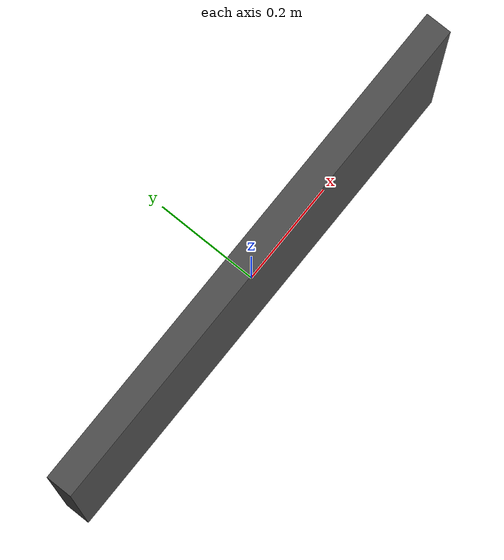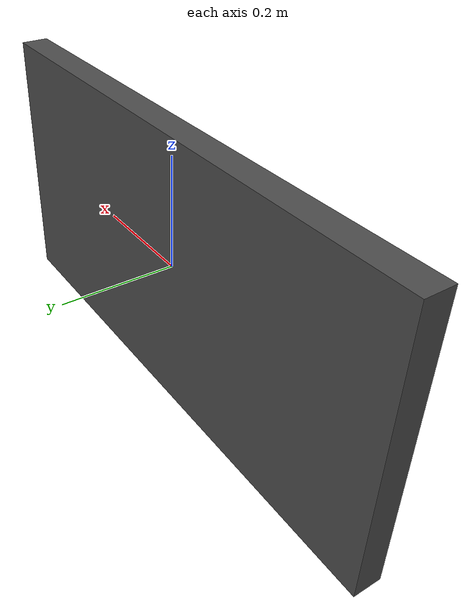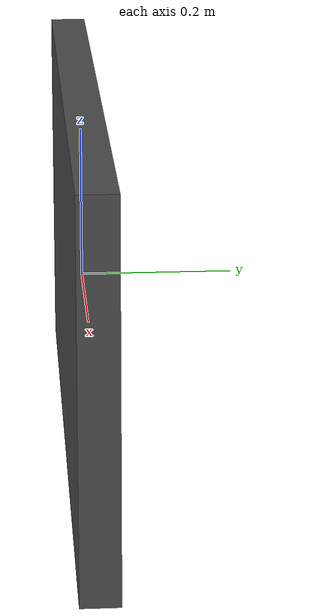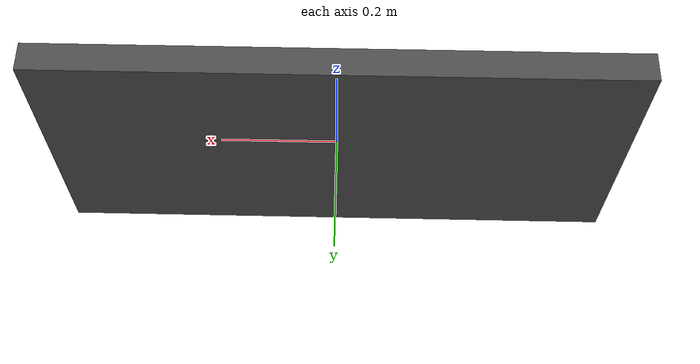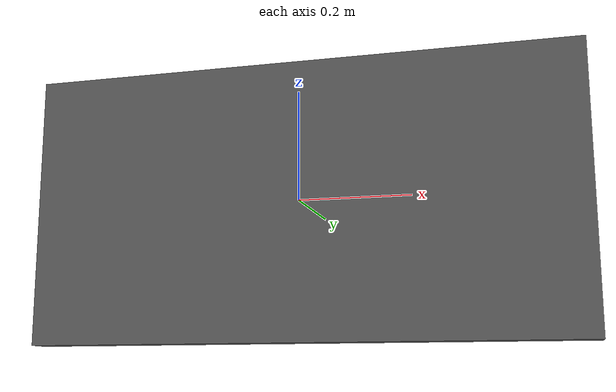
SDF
<?xml version='1.0'?>
<sdf version='1.7'>
  <model name='parede_01'>
    <pose>0 0 0 0 0 0</pose>
    <link name='Wall_01'>
      <collision name='Wall_01_Collision'>
        <geometry>
          <box>
            <size>1.0 0.05 0.5</size>
          </box>
        </geometry>
        <pose>0 0 0 0 -0 0</pose>
      </collision>
      <visual name='Wall_01_Visual'>
        <pose>0 0 0 0 -0 0</pose>
        <geometry>
          <box>
            <size>1 0.05 0.5</size>
          </box>
        </geometry>
        <material>
          <script>
            <uri>file://media/materials/scripts/gazebo.material</uri>
            <name>Gazebo/DarkGrey</name>
          </script>
          <ambient>1 1 1 1</ambient>
        </material>
        <meta>
          <layer>0</layer>
        </meta>
      </visual>
      <pose>0 0 0 0 0 0</pose>
    </link>
    <static>1</static>
  </model>
</sdf>
